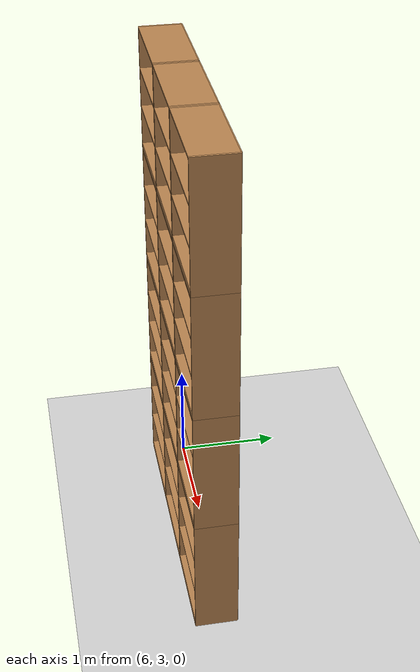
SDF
<sdf version="1.6">
 <world name="default">
  <model name="ground_plane">
   <static>1</static>
   <link name="link">
    <collision name="collision">
     <geometry><plane><normal>0 0 1</normal><size>100 100</size></plane></geometry>
     <surface>
      <contact><collide_bitmask>65535</collide_bitmask></contact>
      <friction><ode><mu>100</mu><mu2>50</mu2></ode></friction>
     </surface>
    </collision>
    <visual name="visual">
     <cast_shadows>0</cast_shadows>
     <geometry><plane><normal>0 0 1</normal><size>100 100</size></plane></geometry>
     <material>
      <script><uri>file://media/materials/scripts/gazebo.material</uri><name>Gazebo/Grey</name></script>
     </material>
    </visual>
   </link>
  </model>
  <model name="shelf2.0_clone_0_clone_clone">
   <model name="shelf1.0">
    <model name="bookshelf">
     <static>1</static>
     <link name="link">
      <inertial><mass>1</mass></inertial>
      <collision name="back">
       <pose>0 0.005 0.6 0 -0 0</pose>
       <geometry><box><size>0.9 0.01 1.2</size></box></geometry>
      </collision>
      <visual name="visual1">
       <pose>0 0.005 0.6 0 -0 0</pose>
       <geometry><box><size>0.9 0.01 1.2</size></box></geometry>
       <material>
        <script><uri>file://media/materials/scripts/gazebo.material</uri><name>Gazebo/Wood</name></script>
       </material>
      </visual>
      <collision name="left_side">
       <pose>0.45 -0.195 0.6 0 -0 0</pose>
       <geometry><box><size>0.02 0.4 1.2</size></box></geometry>
      </collision>
      <visual name="visual2">
       <pose>0.45 -0.195 0.6 0 -0 0</pose>
       <geometry><box><size>0.02 0.4 1.2</size></box></geometry>
       <material>
        <script><uri>file://media/materials/scripts/gazebo.material</uri><name>Gazebo/Wood</name></script>
       </material>
      </visual>
      <collision name="right_side">
       <pose>-0.45 -0.195 0.6 0 -0 0</pose>
       <geometry><box><size>0.02 0.4 1.2</size></box></geometry>
      </collision>
      <visual name="visual3">
       <pose>-0.45 -0.195 0.6 0 -0 0</pose>
       <geometry><box><size>0.02 0.4 1.2</size></box></geometry>
       <material>
        <script><uri>file://media/materials/scripts/gazebo.material</uri><name>Gazebo/Wood</name></script>
       </material>
      </visual>
      <collision name="bottom">
       <pose>0 -0.195 0.03 0 -0 0</pose>
       <geometry><box><size>0.88 0.4 0.06</size></box></geometry>
      </collision>
      <visual name="visual4">
       <pose>0 -0.195 0.03 0 -0 0</pose>
       <geometry><box><size>0.88 0.4 0.06</size></box></geometry>
       <material>
        <script><uri>file://media/materials/scripts/gazebo.material</uri><name>Gazebo/Wood</name></script>
       </material>
      </visual>
      <collision name="top">
       <pose>0 -0.195 1.19 0 -0 0</pose>
       <geometry><box><size>0.88 0.4 0.02</size></box></geometry>
      </collision>
      <visual name="visual5">
       <pose>0 -0.195 1.19 0 -0 0</pose>
       <geometry><box><size>0.88 0.4 0.02</size></box></geometry>
       <material>
        <script><uri>file://media/materials/scripts/gazebo.material</uri><name>Gazebo/Wood</name></script>
       </material>
      </visual>
      <collision name="low_shelf">
       <pose>0 -0.195 0.43 0 -0 0</pose>
       <geometry><box><size>0.88 0.4 0.02</size></box></geometry>
      </collision>
      <visual name="visual6">
       <pose>0 -0.195 0.43 0 -0 0</pose>
       <geometry><box><size>0.88 0.4 0.02</size></box></geometry>
       <material>
        <script><uri>file://media/materials/scripts/gazebo.material</uri><name>Gazebo/Wood</name></script>
       </material>
      </visual>
      <collision name="high_shelf">
       <pose>0 -0.195 0.8 0 -0 0</pose>
       <geometry><box><size>0.88 0.4 0.02</size></box></geometry>
      </collision>
      <visual name="visual7">
       <pose>0 -0.195 0.8 0 -0 0</pose>
       <geometry><box><size>0.88 0.4 0.02</size></box></geometry>
       <material>
        <script><uri>file://media/materials/scripts/gazebo.material</uri><name>Gazebo/Wood</name></script>
       </material>
      </visual>
     </link>
     <pose>1e-06 0 -1.8 0 -0 0</pose>
    </model>
    <model name="bookshelf_clone">
     <static>1</static>
     <link name="link">
      <inertial><mass>1</mass></inertial>
      <collision name="back">
       <pose>0 0.005 0.6 0 -0 0</pose>
       <geometry><box><size>0.9 0.01 1.2</size></box></geometry>
      </collision>
      <visual name="visual1">
       <pose>0 0.005 0.6 0 -0 0</pose>
       <geometry><box><size>0.9 0.01 1.2</size></box></geometry>
       <material>
        <script><uri>file://media/materials/scripts/gazebo.material</uri><name>Gazebo/Wood</name></script>
       </material>
      </visual>
      <collision name="left_side">
       <pose>0.45 -0.195 0.6 0 -0 0</pose>
       <geometry><box><size>0.02 0.4 1.2</size></box></geometry>
      </collision>
      <visual name="visual2">
       <pose>0.45 -0.195 0.6 0 -0 0</pose>
       <geometry><box><size>0.02 0.4 1.2</size></box></geometry>
       <material>
        <script><uri>file://media/materials/scripts/gazebo.material</uri><name>Gazebo/Wood</name></script>
       </material>
      </visual>
      <collision name="right_side">
       <pose>-0.45 -0.195 0.6 0 -0 0</pose>
       <geometry><box><size>0.02 0.4 1.2</size></box></geometry>
      </collision>
      <visual name="visual3">
       <pose>-0.45 -0.195 0.6 0 -0 0</pose>
       <geometry><box><size>0.02 0.4 1.2</size></box></geometry>
       <material>
        <script><uri>file://media/materials/scripts/gazebo.material</uri><name>Gazebo/Wood</name></script>
       </material>
      </visual>
      <collision name="bottom">
       <pose>0 -0.195 0.03 0 -0 0</pose>
       <geometry><box><size>0.88 0.4 0.06</size></box></geometry>
      </collision>
      <visual name="visual4">
       <pose>0 -0.195 0.03 0 -0 0</pose>
       <geometry><box><size>0.88 0.4 0.06</size></box></geometry>
       <material>
        <script><uri>file://media/materials/scripts/gazebo.material</uri><name>Gazebo/Wood</name></script>
       </material>
      </visual>
      <collision name="top">
       <pose>0 -0.195 1.19 0 -0 0</pose>
       <geometry><box><size>0.88 0.4 0.02</size></box></geometry>
      </collision>
      <visual name="visual5">
       <pose>0 -0.195 1.19 0 -0 0</pose>
       <geometry><box><size>0.88 0.4 0.02</size></box></geometry>
       <material>
        <script><uri>file://media/materials/scripts/gazebo.material</uri><name>Gazebo/Wood</name></script>
       </material>
      </visual>
      <collision name="low_shelf">
       <pose>0 -0.195 0.43 0 -0 0</pose>
       <geometry><box><size>0.88 0.4 0.02</size></box></geometry>
      </collision>
      <visual name="visual6">
       <pose>0 -0.195 0.43 0 -0 0</pose>
       <geometry><box><size>0.88 0.4 0.02</size></box></geometry>
       <material>
        <script><uri>file://media/materials/scripts/gazebo.material</uri><name>Gazebo/Wood</name></script>
       </material>
      </visual>
      <collision name="high_shelf">
       <pose>0 -0.195 0.8 0 -0 0</pose>
       <geometry><box><size>0.88 0.4 0.02</size></box></geometry>
      </collision>
      <visual name="visual7">
       <pose>0 -0.195 0.8 0 -0 0</pose>
       <geometry><box><size>0.88 0.4 0.02</size></box></geometry>
       <material>
        <script><uri>file://media/materials/scripts/gazebo.material</uri><name>Gazebo/Wood</name></script>
       </material>
      </visual>
     </link>
     <pose>1e-06 0 -0.600002 0 -0 0</pose>
    </model>
    <model name="bookshelf_clone_0">
     <static>1</static>
     <link name="link">
      <inertial><mass>1</mass></inertial>
      <collision name="back">
       <pose>0 0.005 0.6 0 -0 0</pose>
       <geometry><box><size>0.9 0.01 1.2</size></box></geometry>
      </collision>
      <visual name="visual1">
       <pose>0 0.005 0.6 0 -0 0</pose>
       <geometry><box><size>0.9 0.01 1.2</size></box></geometry>
       <material>
        <script><uri>file://media/materials/scripts/gazebo.material</uri><name>Gazebo/Wood</name></script>
       </material>
      </visual>
      <collision name="left_side">
       <pose>0.45 -0.195 0.6 0 -0 0</pose>
       <geometry><box><size>0.02 0.4 1.2</size></box></geometry>
      </collision>
      <visual name="visual2">
       <pose>0.45 -0.195 0.6 0 -0 0</pose>
       <geometry><box><size>0.02 0.4 1.2</size></box></geometry>
       <material>
        <script><uri>file://media/materials/scripts/gazebo.material</uri><name>Gazebo/Wood</name></script>
       </material>
      </visual>
      <collision name="right_side">
       <pose>-0.45 -0.195 0.6 0 -0 0</pose>
       <geometry><box><size>0.02 0.4 1.2</size></box></geometry>
      </collision>
      <visual name="visual3">
       <pose>-0.45 -0.195 0.6 0 -0 0</pose>
       <geometry><box><size>0.02 0.4 1.2</size></box></geometry>
       <material>
        <script><uri>file://media/materials/scripts/gazebo.material</uri><name>Gazebo/Wood</name></script>
       </material>
      </visual>
      <collision name="bottom">
       <pose>0 -0.195 0.03 0 -0 0</pose>
       <geometry><box><size>0.88 0.4 0.06</size></box></geometry>
      </collision>
      <visual name="visual4">
       <pose>0 -0.195 0.03 0 -0 0</pose>
       <geometry><box><size>0.88 0.4 0.06</size></box></geometry>
       <material>
        <script><uri>file://media/materials/scripts/gazebo.material</uri><name>Gazebo/Wood</name></script>
       </material>
      </visual>
      <collision name="top">
       <pose>0 -0.195 1.19 0 -0 0</pose>
       <geometry><box><size>0.88 0.4 0.02</size></box></geometry>
      </collision>
      <visual name="visual5">
       <pose>0 -0.195 1.19 0 -0 0</pose>
       <geometry><box><size>0.88 0.4 0.02</size></box></geometry>
       <material>
        <script><uri>file://media/materials/scripts/gazebo.material</uri><name>Gazebo/Wood</name></script>
       </material>
      </visual>
      <collision name="low_shelf">
       <pose>0 -0.195 0.43 0 -0 0</pose>
       <geometry><box><size>0.88 0.4 0.02</size></box></geometry>
      </collision>
      <visual name="visual6">
       <pose>0 -0.195 0.43 0 -0 0</pose>
       <geometry><box><size>0.88 0.4 0.02</size></box></geometry>
       <material>
        <script><uri>file://media/materials/scripts/gazebo.material</uri><name>Gazebo/Wood</name></script>
       </material>
      </visual>
      <collision name="high_shelf">
       <pose>0 -0.195 0.8 0 -0 0</pose>
       <geometry><box><size>0.88 0.4 0.02</size></box></geometry>
      </collision>
      <visual name="visual7">
       <pose>0 -0.195 0.8 0 -0 0</pose>
       <geometry><box><size>0.88 0.4 0.02</size></box></geometry>
       <material>
        <script><uri>file://media/materials/scripts/gazebo.material</uri><name>Gazebo/Wood</name></script>
       </material>
      </visual>
     </link>
     <pose>1e-06 0 0.599998 0 -0 0</pose>
    </model>
    <model name="bookshelf_clone_0_clone">
     <static>1</static>
     <link name="link">
      <inertial><mass>1</mass></inertial>
      <collision name="back">
       <pose>0 0.005 0.6 0 -0 0</pose>
       <geometry><box><size>0.9 0.01 1.2</size></box></geometry>
      </collision>
      <visual name="visual1">
       <pose>0 0.005 0.6 0 -0 0</pose>
       <geometry><box><size>0.9 0.01 1.2</size></box></geometry>
       <material>
        <script><uri>file://media/materials/scripts/gazebo.material</uri><name>Gazebo/Wood</name></script>
       </material>
      </visual>
      <collision name="left_side">
       <pose>0.45 -0.195 0.6 0 -0 0</pose>
       <geometry><box><size>0.02 0.4 1.2</size></box></geometry>
      </collision>
      <visual name="visual2">
       <pose>0.45 -0.195 0.6 0 -0 0</pose>
       <geometry><box><size>0.02 0.4 1.2</size></box></geometry>
       <material>
        <script><uri>file://media/materials/scripts/gazebo.material</uri><name>Gazebo/Wood</name></script>
       </material>
      </visual>
      <collision name="right_side">
       <pose>-0.45 -0.195 0.6 0 -0 0</pose>
       <geometry><box><size>0.02 0.4 1.2</size></box></geometry>
      </collision>
      <visual name="visual3">
       <pose>-0.45 -0.195 0.6 0 -0 0</pose>
       <geometry><box><size>0.02 0.4 1.2</size></box></geometry>
       <material>
        <script><uri>file://media/materials/scripts/gazebo.material</uri><name>Gazebo/Wood</name></script>
       </material>
      </visual>
      <collision name="bottom">
       <pose>0 -0.195 0.03 0 -0 0</pose>
       <geometry><box><size>0.88 0.4 0.06</size></box></geometry>
      </collision>
      <visual name="visual4">
       <pose>0 -0.195 0.03 0 -0 0</pose>
       <geometry><box><size>0.88 0.4 0.06</size></box></geometry>
       <material>
        <script><uri>file://media/materials/scripts/gazebo.material</uri><name>Gazebo/Wood</name></script>
       </material>
      </visual>
      <collision name="top">
       <pose>0 -0.195 1.19 0 -0 0</pose>
       <geometry><box><size>0.88 0.4 0.02</size></box></geometry>
      </collision>
      <visual name="visual5">
       <pose>0 -0.195 1.19 0 -0 0</pose>
       <geometry><box><size>0.88 0.4 0.02</size></box></geometry>
       <material>
        <script><uri>file://media/materials/scripts/gazebo.material</uri><name>Gazebo/Wood</name></script>
       </material>
      </visual>
      <collision name="low_shelf">
       <pose>0 -0.195 0.43 0 -0 0</pose>
       <geometry><box><size>0.88 0.4 0.02</size></box></geometry>
      </collision>
      <visual name="visual6">
       <pose>0 -0.195 0.43 0 -0 0</pose>
       <geometry><box><size>0.88 0.4 0.02</size></box></geometry>
       <material>
        <script><uri>file://media/materials/scripts/gazebo.material</uri><name>Gazebo/Wood</name></script>
       </material>
      </visual>
      <collision name="high_shelf">
       <pose>0 -0.195 0.8 0 -0 0</pose>
       <geometry><box><size>0.88 0.4 0.02</size></box></geometry>
      </collision>
      <visual name="visual7">
       <pose>0 -0.195 0.8 0 -0 0</pose>
       <geometry><box><size>0.88 0.4 0.02</size></box></geometry>
       <material>
        <script><uri>file://media/materials/scripts/gazebo.material</uri><name>Gazebo/Wood</name></script>
       </material>
      </visual>
     </link>
     <pose>1e-06 0 1.8 0 -0 0</pose>
    </model>
    <joint name="link_JOINT_3" type="fixed">
     <parent>bookshelf::link</parent>
     <child>bookshelf_clone::link</child>
     <physics>
      <ode><limit><cfm>0</cfm><erp>0.2</erp></limit><suspension><cfm>0</cfm><erp>0.2</erp></suspension></ode>
     </physics>
    </joint>
    <joint name="link_JOINT_4" type="fixed">
     <parent>bookshelf::link</parent>
     <child>bookshelf_clone_0::link</child>
     <physics>
      <ode><limit><cfm>0</cfm><erp>0.2</erp></limit><suspension><cfm>0</cfm><erp>0.2</erp></suspension></ode>
     </physics>
    </joint>
    <joint name="link_JOINT_5" type="fixed">
     <parent>bookshelf::link</parent>
     <child>bookshelf_clone_0_clone::link</child>
     <physics>
      <ode><limit><cfm>0</cfm><erp>0.2</erp></limit><suspension><cfm>0</cfm><erp>0.2</erp></suspension></ode>
     </physics>
    </joint>
    <static>0</static>
    <pose>-0.920027 0 0 0 -0 0</pose>
   </model>
   <model name="shelf1.0_clone">
    <model name="bookshelf">
     <static>1</static>
     <link name="link">
      <inertial><mass>1</mass></inertial>
      <collision name="back">
       <pose>0 0.005 0.6 0 -0 0</pose>
       <geometry><box><size>0.9 0.01 1.2</size></box></geometry>
      </collision>
      <visual name="visual1">
       <pose>0 0.005 0.6 0 -0 0</pose>
       <geometry><box><size>0.9 0.01 1.2</size></box></geometry>
       <material>
        <script><uri>file://media/materials/scripts/gazebo.material</uri><name>Gazebo/Wood</name></script>
       </material>
      </visual>
      <collision name="left_side">
       <pose>0.45 -0.195 0.6 0 -0 0</pose>
       <geometry><box><size>0.02 0.4 1.2</size></box></geometry>
      </collision>
      <visual name="visual2">
       <pose>0.45 -0.195 0.6 0 -0 0</pose>
       <geometry><box><size>0.02 0.4 1.2</size></box></geometry>
       <material>
        <script><uri>file://media/materials/scripts/gazebo.material</uri><name>Gazebo/Wood</name></script>
       </material>
      </visual>
      <collision name="right_side">
       <pose>-0.45 -0.195 0.6 0 -0 0</pose>
       <geometry><box><size>0.02 0.4 1.2</size></box></geometry>
      </collision>
      <visual name="visual3">
       <pose>-0.45 -0.195 0.6 0 -0 0</pose>
       <geometry><box><size>0.02 0.4 1.2</size></box></geometry>
       <material>
        <script><uri>file://media/materials/scripts/gazebo.material</uri><name>Gazebo/Wood</name></script>
       </material>
      </visual>
      <collision name="bottom">
       <pose>0 -0.195 0.03 0 -0 0</pose>
       <geometry><box><size>0.88 0.4 0.06</size></box></geometry>
      </collision>
      <visual name="visual4">
       <pose>0 -0.195 0.03 0 -0 0</pose>
       <geometry><box><size>0.88 0.4 0.06</size></box></geometry>
       <material>
        <script><uri>file://media/materials/scripts/gazebo.material</uri><name>Gazebo/Wood</name></script>
       </material>
      </visual>
      <collision name="top">
       <pose>0 -0.195 1.19 0 -0 0</pose>
       <geometry><box><size>0.88 0.4 0.02</size></box></geometry>
      </collision>
      <visual name="visual5">
       <pose>0 -0.195 1.19 0 -0 0</pose>
       <geometry><box><size>0.88 0.4 0.02</size></box></geometry>
       <material>
        <script><uri>file://media/materials/scripts/gazebo.material</uri><name>Gazebo/Wood</name></script>
       </material>
      </visual>
      <collision name="low_shelf">
       <pose>0 -0.195 0.43 0 -0 0</pose>
       <geometry><box><size>0.88 0.4 0.02</size></box></geometry>
      </collision>
      <visual name="visual6">
       <pose>0 -0.195 0.43 0 -0 0</pose>
       <geometry><box><size>0.88 0.4 0.02</size></box></geometry>
       <material>
        <script><uri>file://media/materials/scripts/gazebo.material</uri><name>Gazebo/Wood</name></script>
       </material>
      </visual>
      <collision name="high_shelf">
       <pose>0 -0.195 0.8 0 -0 0</pose>
       <geometry><box><size>0.88 0.4 0.02</size></box></geometry>
      </collision>
      <visual name="visual7">
       <pose>0 -0.195 0.8 0 -0 0</pose>
       <geometry><box><size>0.88 0.4 0.02</size></box></geometry>
       <material>
        <script><uri>file://media/materials/scripts/gazebo.material</uri><name>Gazebo/Wood</name></script>
       </material>
      </visual>
     </link>
     <pose>1e-06 0 -1.8 0 -0 0</pose>
    </model>
    <model name="bookshelf_clone">
     <static>1</static>
     <link name="link">
      <inertial><mass>1</mass></inertial>
      <collision name="back">
       <pose>0 0.005 0.6 0 -0 0</pose>
       <geometry><box><size>0.9 0.01 1.2</size></box></geometry>
      </collision>
      <visual name="visual1">
       <pose>0 0.005 0.6 0 -0 0</pose>
       <geometry><box><size>0.9 0.01 1.2</size></box></geometry>
       <material>
        <script><uri>file://media/materials/scripts/gazebo.material</uri><name>Gazebo/Wood</name></script>
       </material>
      </visual>
      <collision name="left_side">
       <pose>0.45 -0.195 0.6 0 -0 0</pose>
       <geometry><box><size>0.02 0.4 1.2</size></box></geometry>
      </collision>
      <visual name="visual2">
       <pose>0.45 -0.195 0.6 0 -0 0</pose>
       <geometry><box><size>0.02 0.4 1.2</size></box></geometry>
       <material>
        <script><uri>file://media/materials/scripts/gazebo.material</uri><name>Gazebo/Wood</name></script>
       </material>
      </visual>
      <collision name="right_side">
       <pose>-0.45 -0.195 0.6 0 -0 0</pose>
       <geometry><box><size>0.02 0.4 1.2</size></box></geometry>
      </collision>
      <visual name="visual3">
       <pose>-0.45 -0.195 0.6 0 -0 0</pose>
       <geometry><box><size>0.02 0.4 1.2</size></box></geometry>
       <material>
        <script><uri>file://media/materials/scripts/gazebo.material</uri><name>Gazebo/Wood</name></script>
       </material>
      </visual>
      <collision name="bottom">
       <pose>0 -0.195 0.03 0 -0 0</pose>
       <geometry><box><size>0.88 0.4 0.06</size></box></geometry>
      </collision>
      <visual name="visual4">
       <pose>0 -0.195 0.03 0 -0 0</pose>
       <geometry><box><size>0.88 0.4 0.06</size></box></geometry>
       <material>
        <script><uri>file://media/materials/scripts/gazebo.material</uri><name>Gazebo/Wood</name></script>
       </material>
      </visual>
      <collision name="top">
       <pose>0 -0.195 1.19 0 -0 0</pose>
       <geometry><box><size>0.88 0.4 0.02</size></box></geometry>
      </collision>
      <visual name="visual5">
       <pose>0 -0.195 1.19 0 -0 0</pose>
       <geometry><box><size>0.88 0.4 0.02</size></box></geometry>
       <material>
        <script><uri>file://media/materials/scripts/gazebo.material</uri><name>Gazebo/Wood</name></script>
       </material>
      </visual>
      <collision name="low_shelf">
       <pose>0 -0.195 0.43 0 -0 0</pose>
       <geometry><box><size>0.88 0.4 0.02</size></box></geometry>
      </collision>
      <visual name="visual6">
       <pose>0 -0.195 0.43 0 -0 0</pose>
       <geometry><box><size>0.88 0.4 0.02</size></box></geometry>
       <material>
        <script><uri>file://media/materials/scripts/gazebo.material</uri><name>Gazebo/Wood</name></script>
       </material>
      </visual>
      <collision name="high_shelf">
       <pose>0 -0.195 0.8 0 -0 0</pose>
       <geometry><box><size>0.88 0.4 0.02</size></box></geometry>
      </collision>
      <visual name="visual7">
       <pose>0 -0.195 0.8 0 -0 0</pose>
       <geometry><box><size>0.88 0.4 0.02</size></box></geometry>
       <material>
        <script><uri>file://media/materials/scripts/gazebo.material</uri><name>Gazebo/Wood</name></script>
       </material>
      </visual>
     </link>
     <pose>1e-06 0 -0.600002 0 -0 0</pose>
    </model>
    <model name="bookshelf_clone_0">
     <static>1</static>
     <link name="link">
      <inertial><mass>1</mass></inertial>
      <collision name="back">
       <pose>0 0.005 0.6 0 -0 0</pose>
       <geometry><box><size>0.9 0.01 1.2</size></box></geometry>
      </collision>
      <visual name="visual1">
       <pose>0 0.005 0.6 0 -0 0</pose>
       <geometry><box><size>0.9 0.01 1.2</size></box></geometry>
       <material>
        <script><uri>file://media/materials/scripts/gazebo.material</uri><name>Gazebo/Wood</name></script>
       </material>
      </visual>
      <collision name="left_side">
       <pose>0.45 -0.195 0.6 0 -0 0</pose>
       <geometry><box><size>0.02 0.4 1.2</size></box></geometry>
      </collision>
      <visual name="visual2">
       <pose>0.45 -0.195 0.6 0 -0 0</pose>
       <geometry><box><size>0.02 0.4 1.2</size></box></geometry>
       <material>
        <script><uri>file://media/materials/scripts/gazebo.material</uri><name>Gazebo/Wood</name></script>
       </material>
      </visual>
      <collision name="right_side">
       <pose>-0.45 -0.195 0.6 0 -0 0</pose>
       <geometry><box><size>0.02 0.4 1.2</size></box></geometry>
      </collision>
      <visual name="visual3">
       <pose>-0.45 -0.195 0.6 0 -0 0</pose>
       <geometry><box><size>0.02 0.4 1.2</size></box></geometry>
       <material>
        <script><uri>file://media/materials/scripts/gazebo.material</uri><name>Gazebo/Wood</name></script>
       </material>
      </visual>
      <collision name="bottom">
       <pose>0 -0.195 0.03 0 -0 0</pose>
       <geometry><box><size>0.88 0.4 0.06</size></box></geometry>
      </collision>
      <visual name="visual4">
       <pose>0 -0.195 0.03 0 -0 0</pose>
       <geometry><box><size>0.88 0.4 0.06</size></box></geometry>
       <material>
        <script><uri>file://media/materials/scripts/gazebo.material</uri><name>Gazebo/Wood</name></script>
       </material>
      </visual>
      <collision name="top">
       <pose>0 -0.195 1.19 0 -0 0</pose>
       <geometry><box><size>0.88 0.4 0.02</size></box></geometry>
      </collision>
      <visual name="visual5">
       <pose>0 -0.195 1.19 0 -0 0</pose>
       <geometry><box><size>0.88 0.4 0.02</size></box></geometry>
       <material>
        <script><uri>file://media/materials/scripts/gazebo.material</uri><name>Gazebo/Wood</name></script>
       </material>
      </visual>
      <collision name="low_shelf">
       <pose>0 -0.195 0.43 0 -0 0</pose>
       <geometry><box><size>0.88 0.4 0.02</size></box></geometry>
      </collision>
      <visual name="visual6">
       <pose>0 -0.195 0.43 0 -0 0</pose>
       <geometry><box><size>0.88 0.4 0.02</size></box></geometry>
       <material>
        <script><uri>file://media/materials/scripts/gazebo.material</uri><name>Gazebo/Wood</name></script>
       </material>
      </visual>
      <collision name="high_shelf">
       <pose>0 -0.195 0.8 0 -0 0</pose>
       <geometry><box><size>0.88 0.4 0.02</size></box></geometry>
      </collision>
      <visual name="visual7">
       <pose>0 -0.195 0.8 0 -0 0</pose>
       <geometry><box><size>0.88 0.4 0.02</size></box></geometry>
       <material>
        <script><uri>file://media/materials/scripts/gazebo.material</uri><name>Gazebo/Wood</name></script>
       </material>
      </visual>
     </link>
     <pose>1e-06 0 0.599998 0 -0 0</pose>
    </model>
    <model name="bookshelf_clone_0_clone">
     <static>1</static>
     <link name="link">
      <inertial><mass>1</mass></inertial>
      <collision name="back">
       <pose>0 0.005 0.6 0 -0 0</pose>
       <geometry><box><size>0.9 0.01 1.2</size></box></geometry>
      </collision>
      <visual name="visual1">
       <pose>0 0.005 0.6 0 -0 0</pose>
       <geometry><box><size>0.9 0.01 1.2</size></box></geometry>
       <material>
        <script><uri>file://media/materials/scripts/gazebo.material</uri><name>Gazebo/Wood</name></script>
       </material>
      </visual>
      <collision name="left_side">
       <pose>0.45 -0.195 0.6 0 -0 0</pose>
       <geometry><box><size>0.02 0.4 1.2</size></box></geometry>
      </collision>
      <visual name="visual2">
       <pose>0.45 -0.195 0.6 0 -0 0</pose>
       <geometry><box><size>0.02 0.4 1.2</size></box></geometry>
       <material>
        <script><uri>file://media/materials/scripts/gazebo.material</uri><name>Gazebo/Wood</name></script>
       </material>
      </visual>
      <collision name="right_side">
       <pose>-0.45 -0.195 0.6 0 -0 0</pose>
       <geometry><box><size>0.02 0.4 1.2</size></box></geometry>
      </collision>
      <visual name="visual3">
       <pose>-0.45 -0.195 0.6 0 -0 0</pose>
       <geometry><box><size>0.02 0.4 1.2</size></box></geometry>
       <material>
        <script><uri>file://media/materials/scripts/gazebo.material</uri><name>Gazebo/Wood</name></script>
       </material>
      </visual>
      <collision name="bottom">
       <pose>0 -0.195 0.03 0 -0 0</pose>
       <geometry><box><size>0.88 0.4 0.06</size></box></geometry>
      </collision>
      <visual name="visual4">
       <pose>0 -0.195 0.03 0 -0 0</pose>
       <geometry><box><size>0.88 0.4 0.06</size></box></geometry>
       <material>
        <script><uri>file://media/materials/scripts/gazebo.material</uri><name>Gazebo/Wood</name></script>
       </material>
      </visual>
      <collision name="top">
       <pose>0 -0.195 1.19 0 -0 0</pose>
       <geometry><box><size>0.88 0.4 0.02</size></box></geometry>
      </collision>
      <visual name="visual5">
       <pose>0 -0.195 1.19 0 -0 0</pose>
       <geometry><box><size>0.88 0.4 0.02</size></box></geometry>
       <material>
        <script><uri>file://media/materials/scripts/gazebo.material</uri><name>Gazebo/Wood</name></script>
       </material>
      </visual>
      <collision name="low_shelf">
       <pose>0 -0.195 0.43 0 -0 0</pose>
       <geometry><box><size>0.88 0.4 0.02</size></box></geometry>
      </collision>
      <visual name="visual6">
       <pose>0 -0.195 0.43 0 -0 0</pose>
       <geometry><box><size>0.88 0.4 0.02</size></box></geometry>
       <material>
        <script><uri>file://media/materials/scripts/gazebo.material</uri><name>Gazebo/Wood</name></script>
       </material>
      </visual>
      <collision name="high_shelf">
       <pose>0 -0.195 0.8 0 -0 0</pose>
       <geometry><box><size>0.88 0.4 0.02</size></box></geometry>
      </collision>
      <visual name="visual7">
       <pose>0 -0.195 0.8 0 -0 0</pose>
       <geometry><box><size>0.88 0.4 0.02</size></box></geometry>
       <material>
        <script><uri>file://media/materials/scripts/gazebo.material</uri><name>Gazebo/Wood</name></script>
       </material>
      </visual>
     </link>
     <pose>1e-06 0 1.8 0 -0 0</pose>
    </model>
    <joint name="link_JOINT_3" type="fixed">
     <parent>bookshelf::link</parent>
     <child>bookshelf_clone::link</child>
     <physics>
      <ode><limit><cfm>0</cfm><erp>0.2</erp></limit><suspension><cfm>0</cfm><erp>0.2</erp></suspension></ode>
     </physics>
    </joint>
    <joint name="link_JOINT_4" type="fixed">
     <parent>bookshelf::link</parent>
     <child>bookshelf_clone_0::link</child>
     <physics>
      <ode><limit><cfm>0</cfm><erp>0.2</erp></limit><suspension><cfm>0</cfm><erp>0.2</erp></suspension></ode>
     </physics>
    </joint>
    <joint name="link_JOINT_5" type="fixed">
     <parent>bookshelf::link</parent>
     <child>bookshelf_clone_0_clone::link</child>
     <physics>
      <ode><limit><cfm>0</cfm><erp>0.2</erp></limit><suspension><cfm>0</cfm><erp>0.2</erp></suspension></ode>
     </physics>
    </joint>
    <static>0</static>
    <pose>-2.5e-05 0 0 0 -0 0</pose>
   </model>
   <model name="shelf1.0_clone_0">
    <model name="bookshelf">
     <static>1</static>
     <link name="link">
      <inertial><mass>1</mass></inertial>
      <collision name="back">
       <pose>0 0.005 0.6 0 -0 0</pose>
       <geometry><box><size>0.9 0.01 1.2</size></box></geometry>
      </collision>
      <visual name="visual1">
       <pose>0 0.005 0.6 0 -0 0</pose>
       <geometry><box><size>0.9 0.01 1.2</size></box></geometry>
       <material>
        <script><uri>file://media/materials/scripts/gazebo.material</uri><name>Gazebo/Wood</name></script>
       </material>
      </visual>
      <collision name="left_side">
       <pose>0.45 -0.195 0.6 0 -0 0</pose>
       <geometry><box><size>0.02 0.4 1.2</size></box></geometry>
      </collision>
      <visual name="visual2">
       <pose>0.45 -0.195 0.6 0 -0 0</pose>
       <geometry><box><size>0.02 0.4 1.2</size></box></geometry>
       <material>
        <script><uri>file://media/materials/scripts/gazebo.material</uri><name>Gazebo/Wood</name></script>
       </material>
      </visual>
      <collision name="right_side">
       <pose>-0.45 -0.195 0.6 0 -0 0</pose>
       <geometry><box><size>0.02 0.4 1.2</size></box></geometry>
      </collision>
      <visual name="visual3">
       <pose>-0.45 -0.195 0.6 0 -0 0</pose>
       <geometry><box><size>0.02 0.4 1.2</size></box></geometry>
       <material>
        <script><uri>file://media/materials/scripts/gazebo.material</uri><name>Gazebo/Wood</name></script>
       </material>
      </visual>
      <collision name="bottom">
       <pose>0 -0.195 0.03 0 -0 0</pose>
       <geometry><box><size>0.88 0.4 0.06</size></box></geometry>
      </collision>
      <visual name="visual4">
       <pose>0 -0.195 0.03 0 -0 0</pose>
       <geometry><box><size>0.88 0.4 0.06</size></box></geometry>
       <material>
        <script><uri>file://media/materials/scripts/gazebo.material</uri><name>Gazebo/Wood</name></script>
       </material>
      </visual>
      <collision name="top">
       <pose>0 -0.195 1.19 0 -0 0</pose>
       <geometry><box><size>0.88 0.4 0.02</size></box></geometry>
      </collision>
      <visual name="visual5">
       <pose>0 -0.195 1.19 0 -0 0</pose>
       <geometry><box><size>0.88 0.4 0.02</size></box></geometry>
       <material>
        <script><uri>file://media/materials/scripts/gazebo.material</uri><name>Gazebo/Wood</name></script>
       </material>
      </visual>
      <collision name="low_shelf">
       <pose>0 -0.195 0.43 0 -0 0</pose>
       <geometry><box><size>0.88 0.4 0.02</size></box></geometry>
      </collision>
      <visual name="visual6">
       <pose>0 -0.195 0.43 0 -0 0</pose>
       <geometry><box><size>0.88 0.4 0.02</size></box></geometry>
       <material>
        <script><uri>file://media/materials/scripts/gazebo.material</uri><name>Gazebo/Wood</name></script>
       </material>
      </visual>
      <collision name="high_shelf">
       <pose>0 -0.195 0.8 0 -0 0</pose>
       <geometry><box><size>0.88 0.4 0.02</size></box></geometry>
      </collision>
      <visual name="visual7">
       <pose>0 -0.195 0.8 0 -0 0</pose>
       <geometry><box><size>0.88 0.4 0.02</size></box></geometry>
       <material>
        <script><uri>file://media/materials/scripts/gazebo.material</uri><name>Gazebo/Wood</name></script>
       </material>
      </visual>
     </link>
     <pose>1e-06 0 -1.8 0 -0 0</pose>
    </model>
    <model name="bookshelf_clone">
     <static>1</static>
     <link name="link">
      <inertial><mass>1</mass></inertial>
      <collision name="back">
       <pose>0 0.005 0.6 0 -0 0</pose>
       <geometry><box><size>0.9 0.01 1.2</size></box></geometry>
      </collision>
      <visual name="visual1">
       <pose>0 0.005 0.6 0 -0 0</pose>
       <geometry><box><size>0.9 0.01 1.2</size></box></geometry>
       <material>
        <script><uri>file://media/materials/scripts/gazebo.material</uri><name>Gazebo/Wood</name></script>
       </material>
      </visual>
      <collision name="left_side">
       <pose>0.45 -0.195 0.6 0 -0 0</pose>
       <geometry><box><size>0.02 0.4 1.2</size></box></geometry>
      </collision>
      <visual name="visual2">
       <pose>0.45 -0.195 0.6 0 -0 0</pose>
       <geometry><box><size>0.02 0.4 1.2</size></box></geometry>
       <material>
        <script><uri>file://media/materials/scripts/gazebo.material</uri><name>Gazebo/Wood</name></script>
       </material>
      </visual>
      <collision name="right_side">
       <pose>-0.45 -0.195 0.6 0 -0 0</pose>
       <geometry><box><size>0.02 0.4 1.2</size></box></geometry>
      </collision>
      <visual name="visual3">
       <pose>-0.45 -0.195 0.6 0 -0 0</pose>
       <geometry><box><size>0.02 0.4 1.2</size></box></geometry>
       <material>
        <script><uri>file://media/materials/scripts/gazebo.material</uri><name>Gazebo/Wood</name></script>
       </material>
      </visual>
      <collision name="bottom">
       <pose>0 -0.195 0.03 0 -0 0</pose>
       <geometry><box><size>0.88 0.4 0.06</size></box></geometry>
      </collision>
      <visual name="visual4">
       <pose>0 -0.195 0.03 0 -0 0</pose>
       <geometry><box><size>0.88 0.4 0.06</size></box></geometry>
       <material>
        <script><uri>file://media/materials/scripts/gazebo.material</uri><name>Gazebo/Wood</name></script>
       </material>
      </visual>
      <collision name="top">
       <pose>0 -0.195 1.19 0 -0 0</pose>
       <geometry><box><size>0.88 0.4 0.02</size></box></geometry>
      </collision>
      <visual name="visual5">
       <pose>0 -0.195 1.19 0 -0 0</pose>
       <geometry><box><size>0.88 0.4 0.02</size></box></geometry>
       <material>
        <script><uri>file://media/materials/scripts/gazebo.material</uri><name>Gazebo/Wood</name></script>
       </material>
      </visual>
      <collision name="low_shelf">
       <pose>0 -0.195 0.43 0 -0 0</pose>
       <geometry><box><size>0.88 0.4 0.02</size></box></geometry>
      </collision>
      <visual name="visual6">
       <pose>0 -0.195 0.43 0 -0 0</pose>
       <geometry><box><size>0.88 0.4 0.02</size></box></geometry>
       <material>
        <script><uri>file://media/materials/scripts/gazebo.material</uri><name>Gazebo/Wood</name></script>
       </material>
      </visual>
      <collision name="high_shelf">
       <pose>0 -0.195 0.8 0 -0 0</pose>
       <geometry><box><size>0.88 0.4 0.02</size></box></geometry>
      </collision>
      <visual name="visual7">
       <pose>0 -0.195 0.8 0 -0 0</pose>
       <geometry><box><size>0.88 0.4 0.02</size></box></geometry>
       <material>
        <script><uri>file://media/materials/scripts/gazebo.material</uri><name>Gazebo/Wood</name></script>
       </material>
      </visual>
     </link>
     <pose>1e-06 0 -0.600002 0 -0 0</pose>
    </model>
    <model name="bookshelf_clone_0">
     <static>1</static>
     <link name="link">
      <inertial><mass>1</mass></inertial>
      <collision name="back">
       <pose>0 0.005 0.6 0 -0 0</pose>
       <geometry><box><size>0.9 0.01 1.2</size></box></geometry>
      </collision>
      <visual name="visual1">
       <pose>0 0.005 0.6 0 -0 0</pose>
       <geometry><box><size>0.9 0.01 1.2</size></box></geometry>
       <material>
        <script><uri>file://media/materials/scripts/gazebo.material</uri><name>Gazebo/Wood</name></script>
       </material>
      </visual>
      <collision name="left_side">
       <pose>0.45 -0.195 0.6 0 -0 0</pose>
       <geometry><box><size>0.02 0.4 1.2</size></box></geometry>
      </collision>
      <visual name="visual2">
       <pose>0.45 -0.195 0.6 0 -0 0</pose>
       <geometry><box><size>0.02 0.4 1.2</size></box></geometry>
       <material>
        <script><uri>file://media/materials/scripts/gazebo.material</uri><name>Gazebo/Wood</name></script>
       </material>
      </visual>
      <collision name="right_side">
       <pose>-0.45 -0.195 0.6 0 -0 0</pose>
       <geometry><box><size>0.02 0.4 1.2</size></box></geometry>
      </collision>
      <visual name="visual3">
       <pose>-0.45 -0.195 0.6 0 -0 0</pose>
       <geometry><box><size>0.02 0.4 1.2</size></box></geometry>
       <material>
        <script><uri>file://media/materials/scripts/gazebo.material</uri><name>Gazebo/Wood</name></script>
       </material>
      </visual>
      <collision name="bottom">
       <pose>0 -0.195 0.03 0 -0 0</pose>
       <geometry><box><size>0.88 0.4 0.06</size></box></geometry>
      </collision>
      <visual name="visual4">
       <pose>0 -0.195 0.03 0 -0 0</pose>
       <geometry><box><size>0.88 0.4 0.06</size></box></geometry>
       <material>
        <script><uri>file://media/materials/scripts/gazebo.material</uri><name>Gazebo/Wood</name></script>
       </material>
      </visual>
      <collision name="top">
       <pose>0 -0.195 1.19 0 -0 0</pose>
       <geometry><box><size>0.88 0.4 0.02</size></box></geometry>
      </collision>
      <visual name="visual5">
       <pose>0 -0.195 1.19 0 -0 0</pose>
       <geometry><box><size>0.88 0.4 0.02</size></box></geometry>
       <material>
        <script><uri>file://media/materials/scripts/gazebo.material</uri><name>Gazebo/Wood</name></script>
       </material>
      </visual>
      <collision name="low_shelf">
       <pose>0 -0.195 0.43 0 -0 0</pose>
       <geometry><box><size>0.88 0.4 0.02</size></box></geometry>
      </collision>
      <visual name="visual6">
       <pose>0 -0.195 0.43 0 -0 0</pose>
       <geometry><box><size>0.88 0.4 0.02</size></box></geometry>
       <material>
        <script><uri>file://media/materials/scripts/gazebo.material</uri><name>Gazebo/Wood</name></script>
       </material>
      </visual>
      <collision name="high_shelf">
       <pose>0 -0.195 0.8 0 -0 0</pose>
       <geometry><box><size>0.88 0.4 0.02</size></box></geometry>
      </collision>
      <visual name="visual7">
       <pose>0 -0.195 0.8 0 -0 0</pose>
       <geometry><box><size>0.88 0.4 0.02</size></box></geometry>
       <material>
        <script><uri>file://media/materials/scripts/gazebo.material</uri><name>Gazebo/Wood</name></script>
       </material>
      </visual>
     </link>
     <pose>1e-06 0 0.599998 0 -0 0</pose>
    </model>
    <model name="bookshelf_clone_0_clone">
     <static>1</static>
     <link name="link">
      <inertial><mass>1</mass></inertial>
      <collision name="back">
       <pose>0 0.005 0.6 0 -0 0</pose>
       <geometry><box><size>0.9 0.01 1.2</size></box></geometry>
      </collision>
      <visual name="visual1">
       <pose>0 0.005 0.6 0 -0 0</pose>
       <geometry><box><size>0.9 0.01 1.2</size></box></geometry>
       <material>
        <script><uri>file://media/materials/scripts/gazebo.material</uri><name>Gazebo/Wood</name></script>
       </material>
      </visual>
      <collision name="left_side">
       <pose>0.45 -0.195 0.6 0 -0 0</pose>
       <geometry><box><size>0.02 0.4 1.2</size></box></geometry>
      </collision>
      <visual name="visual2">
       <pose>0.45 -0.195 0.6 0 -0 0</pose>
       <geometry><box><size>0.02 0.4 1.2</size></box></geometry>
       <material>
        <script><uri>file://media/materials/scripts/gazebo.material</uri><name>Gazebo/Wood</name></script>
       </material>
      </visual>
      <collision name="right_side">
       <pose>-0.45 -0.195 0.6 0 -0 0</pose>
       <geometry><box><size>0.02 0.4 1.2</size></box></geometry>
      </collision>
      <visual name="visual3">
       <pose>-0.45 -0.195 0.6 0 -0 0</pose>
       <geometry><box><size>0.02 0.4 1.2</size></box></geometry>
       <material>
        <script><uri>file://media/materials/scripts/gazebo.material</uri><name>Gazebo/Wood</name></script>
       </material>
      </visual>
      <collision name="bottom">
       <pose>0 -0.195 0.03 0 -0 0</pose>
       <geometry><box><size>0.88 0.4 0.06</size></box></geometry>
      </collision>
      <visual name="visual4">
       <pose>0 -0.195 0.03 0 -0 0</pose>
       <geometry><box><size>0.88 0.4 0.06</size></box></geometry>
       <material>
        <script><uri>file://media/materials/scripts/gazebo.material</uri><name>Gazebo/Wood</name></script>
       </material>
      </visual>
      <collision name="top">
       <pose>0 -0.195 1.19 0 -0 0</pose>
       <geometry><box><size>0.88 0.4 0.02</size></box></geometry>
      </collision>
      <visual name="visual5">
       <pose>0 -0.195 1.19 0 -0 0</pose>
       <geometry><box><size>0.88 0.4 0.02</size></box></geometry>
       <material>
        <script><uri>file://media/materials/scripts/gazebo.material</uri><name>Gazebo/Wood</name></script>
       </material>
      </visual>
      <collision name="low_shelf">
       <pose>0 -0.195 0.43 0 -0 0</pose>
       <geometry><box><size>0.88 0.4 0.02</size></box></geometry>
      </collision>
      <visual name="visual6">
       <pose>0 -0.195 0.43 0 -0 0</pose>
       <geometry><box><size>0.88 0.4 0.02</size></box></geometry>
       <material>
        <script><uri>file://media/materials/scripts/gazebo.material</uri><name>Gazebo/Wood</name></script>
       </material>
      </visual>
      <collision name="high_shelf">
       <pose>0 -0.195 0.8 0 -0 0</pose>
       <geometry><box><size>0.88 0.4 0.02</size></box></geometry>
      </collision>
      <visual name="visual7">
       <pose>0 -0.195 0.8 0 -0 0</pose>
       <geometry><box><size>0.88 0.4 0.02</size></box></geometry>
       <material>
        <script><uri>file://media/materials/scripts/gazebo.material</uri><name>Gazebo/Wood</name></script>
       </material>
      </visual>
     </link>
     <pose>1e-06 0 1.8 0 -0 0</pose>
    </model>
    <joint name="link_JOINT_3" type="fixed">
     <parent>bookshelf::link</parent>
     <child>bookshelf_clone::link</child>
     <physics>
      <ode><limit><cfm>0</cfm><erp>0.2</erp></limit><suspension><cfm>0</cfm><erp>0.2</erp></suspension></ode>
     </physics>
    </joint>
    <joint name="link_JOINT_4" type="fixed">
     <parent>bookshelf::link</parent>
     <child>bookshelf_clone_0::link</child>
     <physics>
      <ode><limit><cfm>0</cfm><erp>0.2</erp></limit><suspension><cfm>0</cfm><erp>0.2</erp></suspension></ode>
     </physics>
    </joint>
    <joint name="link_JOINT_5" type="fixed">
     <parent>bookshelf::link</parent>
     <child>bookshelf_clone_0_clone::link</child>
     <physics>
      <ode><limit><cfm>0</cfm><erp>0.2</erp></limit><suspension><cfm>0</cfm><erp>0.2</erp></suspension></ode>
     </physics>
    </joint>
    <static>0</static>
    <pose>0.919977 0 0 0 -0 0</pose>
   </model>
   <joint name="link_JOINT_0" type="fixed">
    <parent>shelf1.0::bookshelf::link</parent>
    <child>shelf1.0_clone::bookshelf::link</child>
    <physics>
     <ode><limit><cfm>0</cfm><erp>0.2</erp></limit><suspension><cfm>0</cfm><erp>0.2</erp></suspension></ode>
    </physics>
   </joint>
   <joint name="link_JOINT_1" type="fixed">
    <parent>shelf1.0::bookshelf::link</parent>
    <child>shelf1.0_clone_0::bookshelf::link</child>
    <physics>
     <ode><limit><cfm>0</cfm><erp>0.2</erp></limit><suspension><cfm>0</cfm><erp>0.2</erp></suspension></ode>
    </physics>
   </joint>
   <static>0</static>
   <pose>7.26008 3.07816 1.80812 0 -0 0</pose>
  </model>
 </world>
</sdf>
